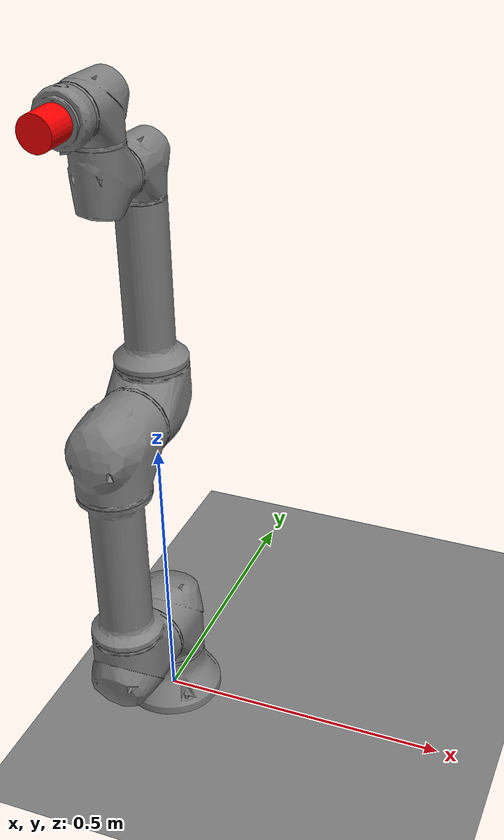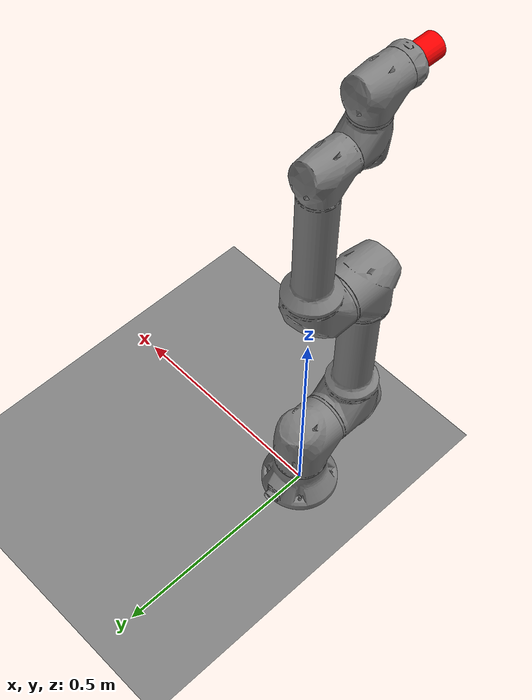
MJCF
<mujoco model="rb5_850e_peg_in_hole">
  <compiler angle="radian" autolimits="true"/>

  <option timestep="0.001"
          integrator="implicit"
          gravity="0 0 -9.81"
          solver="Newton"
          iterations="200"
          ls_iterations="100"
          noslip_iterations="8"
          impratio="10"
          ccd_iterations="100"
          ccd_tolerance="1e-8">
    <flag multiccd="enable" nativeccd="enable"/>
  </option>

  <asset>
    <mesh name="link0_mesh" file="/home/chu/manipulator_control/rbpodo_ros2/rbpodo_description/meshes/rb5_850e/collision/link0.stl"/>
    <mesh name="link1_mesh" file="/home/chu/manipulator_control/rbpodo_ros2/rbpodo_description/meshes/rb5_850e/collision/link1.stl"/>
    <mesh name="link2_mesh" file="/home/chu/manipulator_control/rbpodo_ros2/rbpodo_description/meshes/rb5_850e/collision/link2.stl"/>
    <mesh name="link3_mesh" file="/home/chu/manipulator_control/rbpodo_ros2/rbpodo_description/meshes/rb5_850e/collision/link3.stl"/>
    <mesh name="link4_mesh" file="/home/chu/manipulator_control/rbpodo_ros2/rbpodo_description/meshes/rb5_850e/collision/link4.stl"/>
    <mesh name="link5_mesh" file="/home/chu/manipulator_control/rbpodo_ros2/rbpodo_description/meshes/rb5_850e/collision/link5.stl"/>
    <mesh name="link6_mesh" file="/home/chu/manipulator_control/rbpodo_ros2/rbpodo_description/meshes/rb5_850e/collision/link6.stl"/>
  </asset>

  <default class="main">
    <geom type="mesh" group="0" contype="1" conaffinity="2"/>
    <joint type="hinge" damping="0.1" armature="0.001"/>
  </default>

  <worldbody>
    <geom name="ground" type="plane" pos="0 0 0" size="5 5 0.1"
          rgba="0.5 0.5 0.5 1"
          friction="1 0.005 0.0001"
          contype="2" conaffinity="1"
          margin="0.001"/>

    <body name="link0" pos="0 0 0">
      <geom type="mesh" mesh="link0_mesh"/>

      <body name="link1" pos="0 0 0.1692" childclass="main">
        <inertial pos="5.7e-05 -0.005795 -0.034516"
                  quat="0.676677 0.181125 -0.183239 0.689729"
                  mass="4.147"
                  diaginertia="0.00940157 0.00878691 0.0073332"/>
        <joint name="base" axis="0 0 1" range="-3.14 3.14"/>
        <geom type="mesh" mesh="link1_mesh"/>

        <body name="link2" pos="0 0 0" childclass="main">
          <inertial pos="-3.7e-05 -0.121603 0.212933"
                    quat="0.999997 0.000348233 7.80187e-05 -0.00223104"
                    mass="9.633"
                    diaginertia="0.392214 0.388915 0.0219492"/>
          <joint name="shoulder" axis="0 1 0" range="-3.14 3.14"/>
          <geom type="mesh" mesh="link2_mesh"/>

          <body name="link3" pos="0 0 0.425" childclass="main">
            <inertial pos="2.1e-05 -0.015845 0.202568"
                      quat="0.999948 0.0100341 -5.40187e-05 -0.00170427"
                      mass="3.915"
                      diaginertia="0.11204 0.111832 0.0075271"/>
            <joint name="elbow" axis="0 1 0" range="-3.14 3.14"/>
            <geom type="mesh" mesh="link3_mesh"/>

            <body name="link4" pos="0 0 0.392" childclass="main">
              <inertial pos="5.7e-05 -0.106332 0.025881"
                        quat="0.986693 0.162394 -0.00142514 0.00799378"
                        mass="1.452"
                        diaginertia="0.00162904 0.00160108 0.00118182"/>
              <joint name="wrist1" axis="0 1 0" range="-3.14 3.14"/>
              <geom type="mesh" mesh="link4_mesh"/>

              <body name="link5" pos="0 -0.1107 0.1107" childclass="main">
                <inertial pos="-2.8e-05 -0.025911 -0.004363"
                          quat="0.812497 0.582798 -0.00662653 0.0123056"
                          mass="1.454"
                          diaginertia="0.00163147 0.00160354 0.00118381"/>
                <joint name="wrist2" axis="0 0 1" range="-3.14 3.14"/>
                <geom type="mesh" mesh="link5_mesh"/>

                <body name="link6" pos="0 0 0" childclass="main">
                  <inertial pos="-2e-06 -0.079964 -0.000494"
                            quat="0.706709 -0.0427371 -0.0387873 0.705146"
                            mass="0.243"
                            diaginertia="0.000243707 0.000147897 0.000142261"/>
                  <joint name="wrist3" axis="0 1 0" range="-3.14 3.14"/>
                  <geom type="mesh" mesh="link6_mesh"/>

                  <!-- tool mount at former tool flange position -->
                  <body name="tool_mount" pos="0 -0.0967 0">
                    <inertial pos="0 -0.025 0"
                              mass="0.60"
                              diaginertia="0.00050 0.00040 0.00040"/>

                    <!-- peg is fixed directly to the end-effector.
                         local -Y is insertion direction.
                         diameter = 50 mm, length = 50 mm -->
                    <geom name="peg_geom"
                          type="cylinder"
                          fromto="0 0 0   0 -0.050 0"
                          size="0.0249"
                          mass="0.20"
                          rgba="1 0 0 1"
                          contype="1"
                          conaffinity="3"
                          margin="0.0005"
                          friction="1.2 0.01 0.0001"/>

                    <!-- reference sites -->
                    <site name="tcp"          pos="0  0.000 0" size="0.004"  rgba="1 0 0 1"/>
                    <site name="grasp_center" pos="0  0.000 0" size="0.004"  rgba="0 1 0 1"/>
                    <site name="peg_base"     pos="0  0.000 0" size="0.004"  rgba="1 0 0 1"/>
                    <site name="peg_center"   pos="0 -0.025 0" size="0.004"  rgba="0 1 0 1"/>
                    <site name="peg_tip"      pos="0 -0.050 0" size="0.005"  rgba="0 0 1 0"/>
                  </body>
                </body>
              </body>
            </body>
          </body>
        </body>
      </body>
    </body>
  </worldbody>

  <actuator>
    <motor name="base_motor" joint="base" ctrllimited="true" ctrlrange="-100 100" gear="1"/>
    <motor name="shoulder_motor" joint="shoulder" ctrllimited="true" ctrlrange="-100 100" gear="1"/>
    <motor name="elbow_motor" joint="elbow" ctrllimited="true" ctrlrange="-100 100" gear="1"/>
    <motor name="wrist1_motor" joint="wrist1" ctrllimited="true" ctrlrange="-100 100" gear="1"/>
    <motor name="wrist2_motor" joint="wrist2" ctrllimited="true" ctrlrange="-100 100" gear="1"/>
    <motor name="wrist3_motor" joint="wrist3" ctrllimited="true" ctrlrange="-100 100" gear="1"/>
  </actuator>

  <keyframe>
    <key name="home" qpos="-0.5 0.0 1.0 0.0 0.0 0.0"/>
  </keyframe>
</mujoco>
